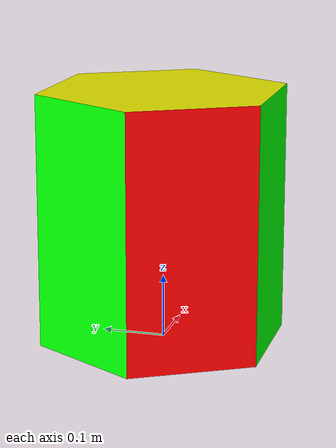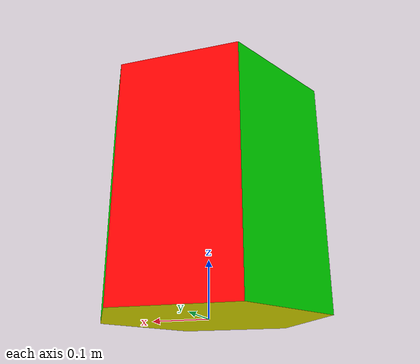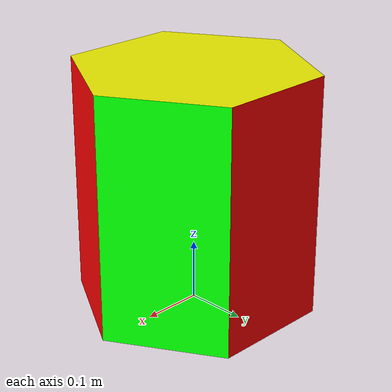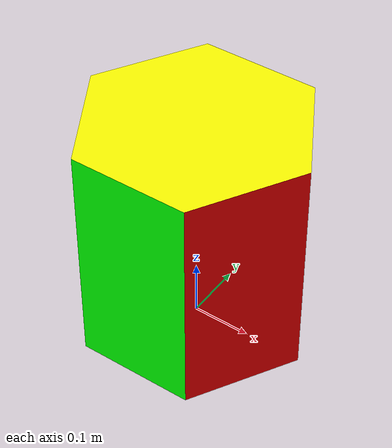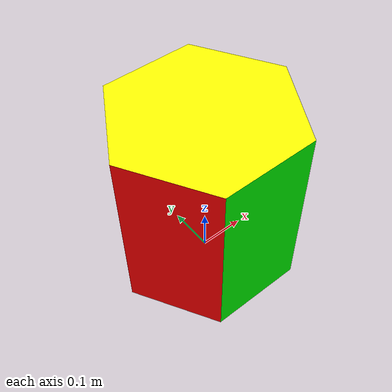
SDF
<?xml version="1.0"?>
<sdf version="1.6">
  <model name="6prism_basic">
    <static>true</static>
    <pose>0 0 0 0 0 0</pose>
    <link name="link1">

      <visual name="visual1">
        <geometry>
          <mesh>
            <uri>model://6prism_basic/meshes/6prism_basic.DAE</uri>
   	    <scale>1 1 1</scale>
          </mesh>
        </geometry>
      </visual>

    </link>
  </model>
</sdf>
